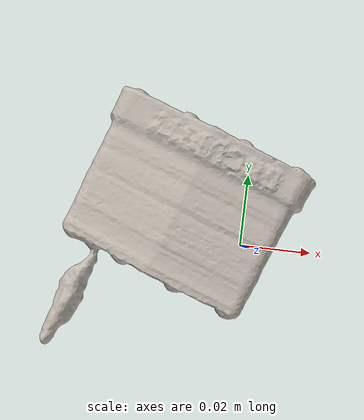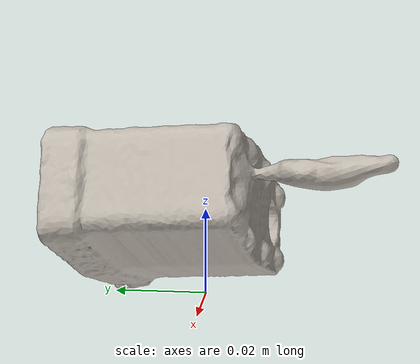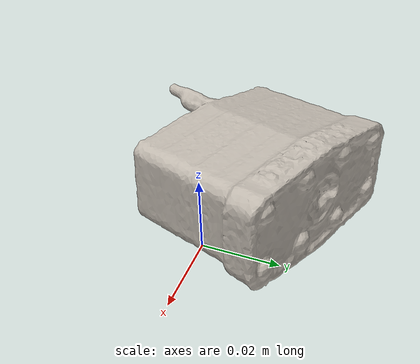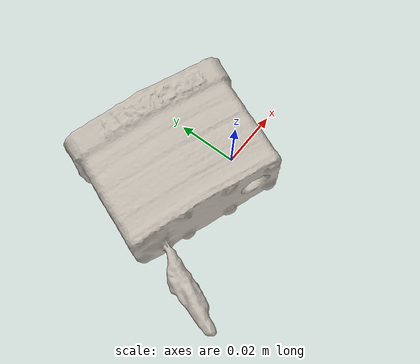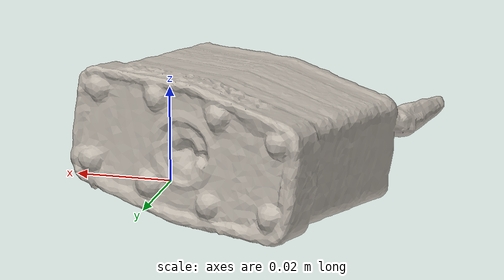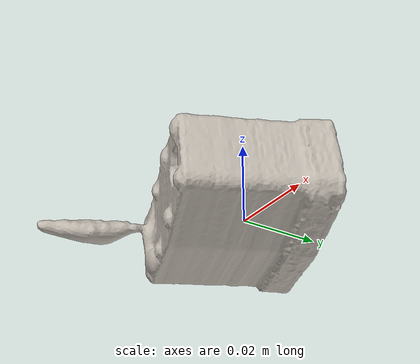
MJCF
<mujoco model="padlock">
  <compiler angle="radian" meshdir="assets" texturedir="assets"/>
    <default>
        <default class="ycb_col">
            <geom contype="1" conaffinity="1" group="3" rgba=".4 .5 .6 1"/>
        </default>
        <default class="ycb_viz">
            <geom contype="0" conaffinity="0" type="mesh" mass="0"/>
        </default>
    </default>
  <asset>
    <texture type="2d" name="padlock_tex" file="texture_map.png"/>
    <material name="padlock_mat" texture="padlock_tex" specular="0.5" shininess="0.5"/>
    <mesh file="textured.obj" name="padlock"/>
    <mesh file="textured_collision_0.obj" name="padlock_collision_0"/>
    <mesh file="textured_collision_1.obj" name="padlock_collision_1"/>
    <mesh file="textured_collision_2.obj" name="padlock_collision_2"/>
    <mesh file="textured_collision_3.obj" name="padlock_collision_3"/>
    <mesh file="textured_collision_4.obj" name="padlock_collision_4"/>
    <mesh file="textured_collision_5.obj" name="padlock_collision_5"/>
    <mesh file="textured_collision_6.obj" name="padlock_collision_6"/>
    <mesh file="textured_collision_7.obj" name="padlock_collision_7"/>
    <mesh file="textured_collision_8.obj" name="padlock_collision_8"/>
  </asset>
  <worldbody>
      <geom material="padlock_mat" mesh="padlock" class="ycb_viz"/>
      <geom mesh="padlock_collision_0" class="ycb_col" conaffinity="1" condim="4" friction="0.1 0.1 0.1" mass="0.0031450782995632947" rgba="1 1 1 1" solimp="0.99 0.99 0.01" solref=".001 0.1" type="mesh" group="3"/>
      <geom mesh="padlock_collision_1" class="ycb_col" conaffinity="1" condim="4" friction="0.1 0.1 0.1" mass="0.011633263344113288" rgba="1 1 1 1" solimp="0.99 0.99 0.01" solref=".001 0.1" type="mesh" group="3"/>
      <geom mesh="padlock_collision_2" class="ycb_col" conaffinity="1" condim="4" friction="0.1 0.1 0.1" mass="0.07799080539240909" rgba="1 1 1 1" solimp="0.99 0.99 0.01" solref=".001 0.1" type="mesh" group="3"/>
      <geom mesh="padlock_collision_3" class="ycb_col" conaffinity="1" condim="4" friction="0.1 0.1 0.1" mass="0.04642966086396847" rgba="1 1 1 1" solimp="0.99 0.99 0.01" solref=".001 0.1" type="mesh" group="3"/>
      <geom mesh="padlock_collision_4" class="ycb_col" conaffinity="1" condim="4" friction="0.1 0.1 0.1" mass="0.057899597863514354" rgba="1 1 1 1" solimp="0.99 0.99 0.01" solref=".001 0.1" type="mesh" group="3"/>
      <geom mesh="padlock_collision_5" class="ycb_col" conaffinity="1" condim="4" friction="0.1 0.1 0.1" mass="0.0019824075183499917" rgba="1 1 1 1" solimp="0.99 0.99 0.01" solref=".001 0.1" type="mesh" group="3"/>
      <geom mesh="padlock_collision_6" class="ycb_col" conaffinity="1" condim="4" friction="0.1 0.1 0.1" mass="0.0027249484009701096" rgba="1 1 1 1" solimp="0.99 0.99 0.01" solref=".001 0.1" type="mesh" group="3"/>
      <geom mesh="padlock_collision_7" class="ycb_col" conaffinity="1" condim="4" friction="0.1 0.1 0.1" mass="0.0023428796356104557" rgba="1 1 1 1" solimp="0.99 0.99 0.01" solref=".001 0.1" type="mesh" group="3"/>
      <geom mesh="padlock_collision_8" class="ycb_col" conaffinity="1" condim="4" friction="0.1 0.1 0.1" mass="0.00385135868150091" rgba="1 1 1 1" solimp="0.99 0.99 0.01" solref=".001 0.1" type="mesh" group="3"/>
  </worldbody>
</mujoco>
